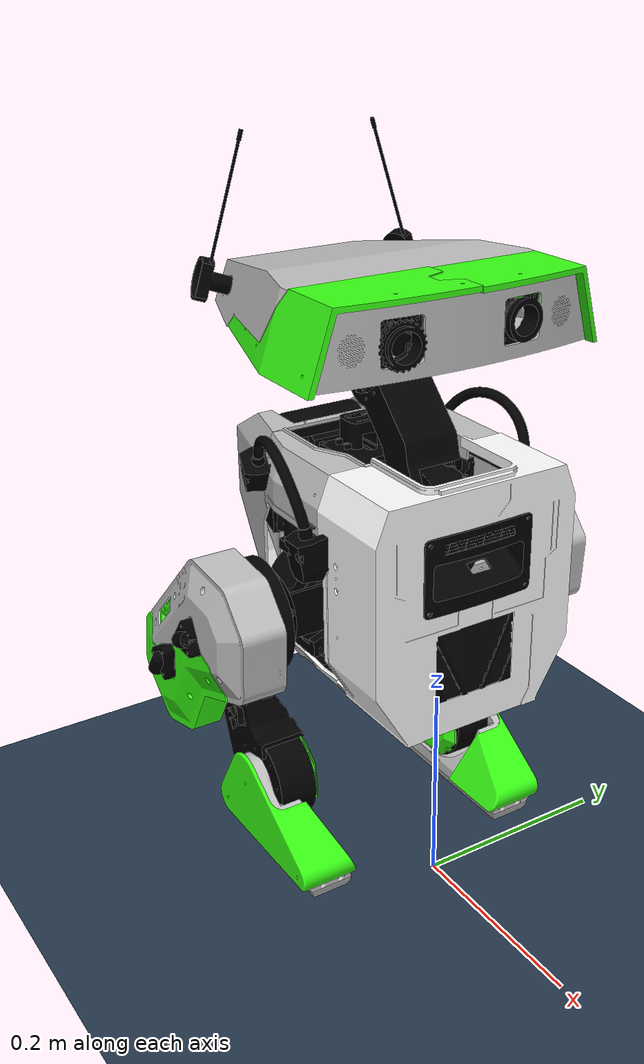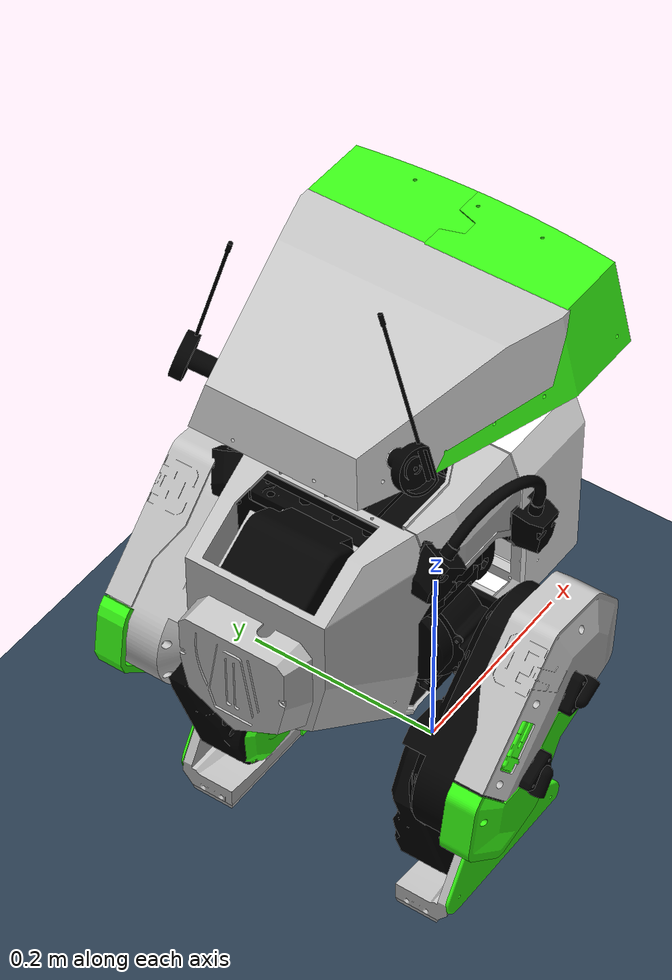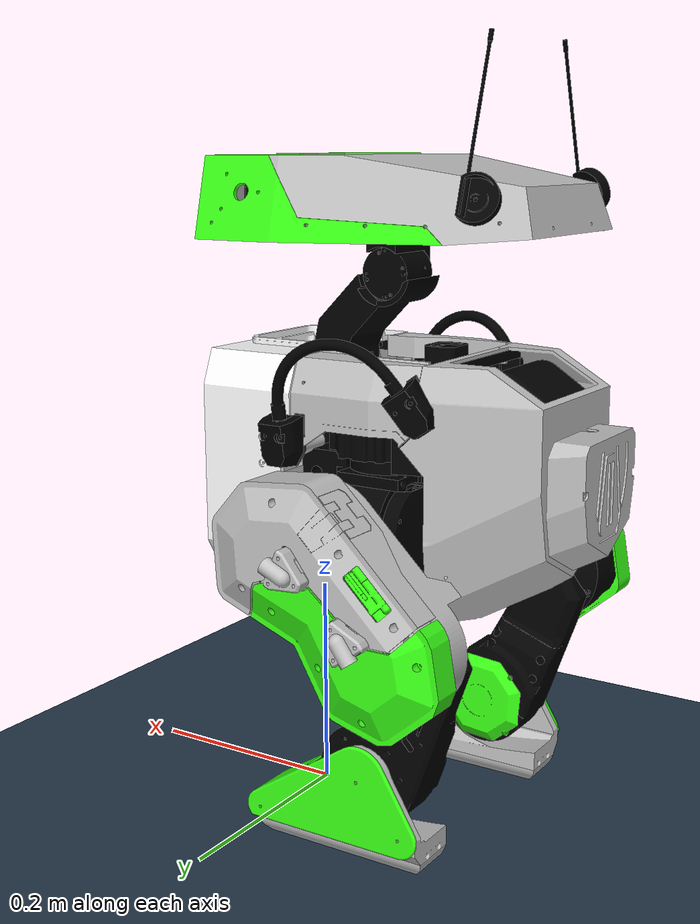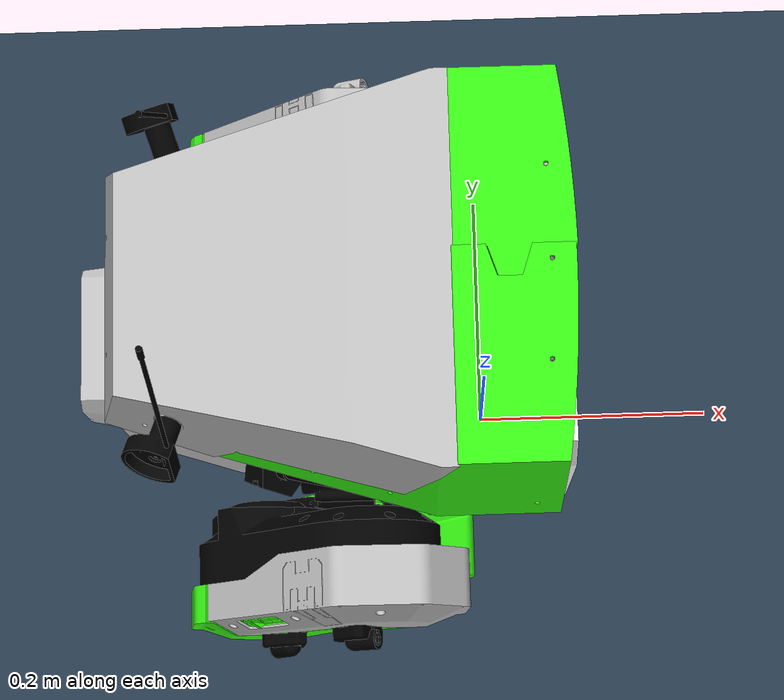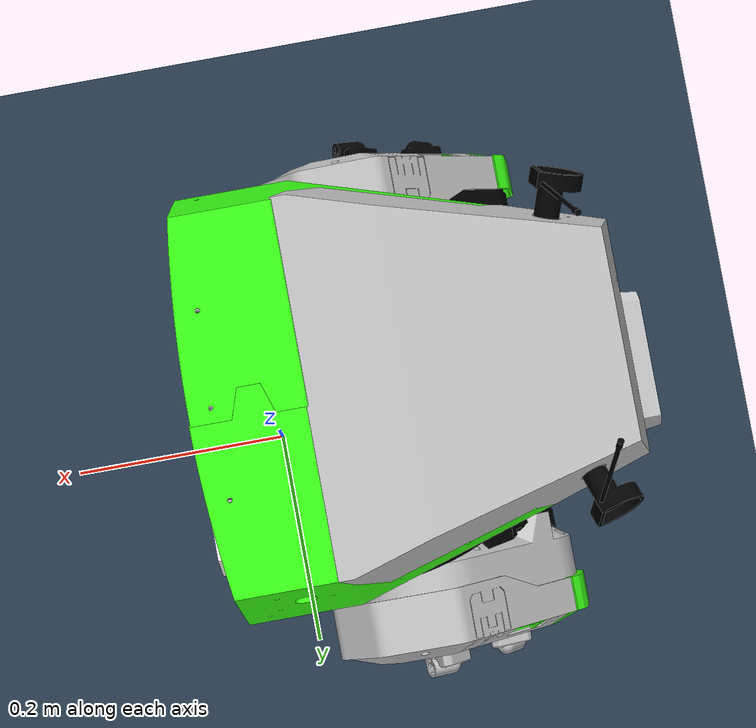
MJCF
<mujoco model="bdx-r">
  <compiler angle="radian" meshdir="assets" autolimits="true"/>

  <default>
    <default class="bdx-r">
      <site group="5" rgba="1 0 0 1" size="0.01" />
      <default class="visual">
          <geom type="mesh" contype="0" conaffinity="0" group="2" density="0" material="black"/>
      </default>
      <default class="collision">
          <geom type="capsule" group="3" material="bright_orange" contype="1" conaffinity="1"/>
      </default>
    </default>
  </default>

  <asset>
    <!-- Textures -->
    <material name="matplane" reflectance="0.3" texture="texplane" texrepeat="1 1" texuniform="true"/>
    <texture type="skybox" builtin="gradient" rgb1="0.3 0.5 0.7" rgb2="0 0 0" width="512" height="512"/>
    <texture name="texplane" type="2d" builtin="checker" rgb1=".2 .3 .4" rgb2=".1 0.15 0.2" width="512" height="512" mark="cross" markrgb=".8 .8 .8"/>

    <!-- Materials -->
    <material name="neon_green" rgba="0.22 1.0 0.08 1.0"/>
    <material name="white" rgba="1.0 1.0 1.0 1.0"/>
    <material name="black" rgba="0.0 0.0 0.0 1.0"/>
    <material name="silver" rgba="0.75 0.75 0.75 1.0"/>
    <material name="red" rgba="1 0 0 1"/>
    <material name="bright_orange"  rgba="1 0.65 0 0.2"/>

    <!-- Meshes -->
    <mesh name="base_link" file="base_link.stl" scale="0.001 0.001 0.001"/>
    <mesh name="Left_Hip_Yaw_Motor" file="Left_Hip_Yaw_Motor.stl" scale="0.001 0.001 0.001"/>
    <mesh name="Right_Hip_Yaw_Motor" file="Right_Hip_Yaw_Motor.stl" scale="0.001 0.001 0.001"/>
    <mesh name="Neck_Motor" file="Neck_Motor.stl" scale="0.001 0.001 0.001"/>
    <mesh name="Neck" file="Neck.stl" scale="0.001 0.001 0.001"/>
    <mesh name="Bottom_Cover" file="Bottom_Cover.stl" scale="0.001 0.001 0.001"/>
    <mesh name="Right_Hip_Yaw_Support" file="Right_Hip_Yaw_Support.stl" scale="0.001 0.001 0.001"/>
    <mesh name="Left_Hip_Yaw_Support" file="Left_Hip_Yaw_Support.stl" scale="0.001 0.001 0.001"/>
    <mesh name="Base_Top_Clamp" file="Base_Top_Clamp.stl" scale="0.001 0.001 0.001"/>
    <mesh name="Head_Pitch_Motor" file="Head_Pitch_Motor.stl" scale="0.001 0.001 0.001"/>
    <mesh name="Left_Holder" file="Left_Holder.stl" scale="0.001 0.001 0.001"/>
    <mesh name="Top_Base_Frame" file="Top_Base_Frame.stl" scale="0.001 0.001 0.001"/>
    <mesh name="Head_Pitch_Motor_Support" file="Head_Pitch_Motor_Support.stl" scale="0.001 0.001 0.001"/>
    <mesh name="Head_Yaw_Motor" file="Head_Yaw_Motor.stl" scale="0.001 0.001 0.001"/>
    <mesh name="Head_Roll_Connector" file="Head_Roll_Connector.stl" scale="0.001 0.001 0.001"/>
    <mesh name="Head_Roll_Motor" file="Head_Roll_Motor.stl" scale="0.001 0.001 0.001"/>
    <mesh name="Head_Roll_Motor_Mount" file="Head_Roll_Motor_Mount.stl" scale="0.001 0.001 0.001"/>
    <mesh name="Front_Support" file="Front_Support.stl" scale="0.001 0.001 0.001"/>
    <mesh name="Right_Cable_Support" file="Right_Cable_Support.stl" scale="0.001 0.001 0.001"/>
    <mesh name="Head_Base_Plate" file="Head_Base_Plate.stl" scale="0.001 0.001 0.001"/>
    <mesh name="Right_Eye" file="Right_Eye.stl" scale="0.001 0.001 0.001"/>
    <mesh name="Front_Cover" file="Front_Cover.stl" scale="0.001 0.001 0.001"/>
    <mesh name="Right_Head_Support" file="Right_Head_Support.stl" scale="0.001 0.001 0.001"/>
    <mesh name="Right_Front_Cover" file="Right_Front_Cover.stl" scale="0.001 0.001 0.001"/>
    <mesh name="Left_Eye" file="Left_Eye.stl" scale="0.001 0.001 0.001"/>
    <mesh name="Right_Holder" file="Right_Holder.stl" scale="0.001 0.001 0.001"/>
    <mesh name="Left_Head_Support" file="Left_Head_Support.stl" scale="0.001 0.001 0.001"/>
    <mesh name="Left_Front_Cover" file="Left_Front_Cover.stl" scale="0.001 0.001 0.001"/>
    <mesh name="Battery_Holder" file="Battery_Holder.stl" scale="0.001 0.001 0.001"/>
    <mesh name="Left_Cable_Support" file="Left_Cable_Support.stl" scale="0.001 0.001 0.001"/>
    <mesh name="Battery" file="Battery.stl" scale="0.001 0.001 0.001"/>
    <mesh name="Back_Support" file="Back_Support.stl" scale="0.001 0.001 0.001"/>
    <mesh name="Rear_Cover" file="Rear_Cover.stl" scale="0.001 0.001 0.001"/>
    <mesh name="Face" file="Face.stl" scale="0.001 0.001 0.001"/>
    <mesh name="Head_Rear_Cover" file="Head_Rear_Cover.stl" scale="0.001 0.001 0.001"/>
    <mesh name="Rear_Head_Plate" file="Rear_Head_Plate.stl" scale="0.001 0.001 0.001"/>
    <mesh name="Right_Ear" file="Right_Ear.stl" scale="0.001 0.001 0.001"/>
    <mesh name="Left_Ear" file="Left_Ear.stl" scale="0.001 0.001 0.001"/>
    <mesh name="Left_Hip_Top_Holder" file="Left_Hip_Top_Holder.stl" scale="0.001 0.001 0.001"/>
    <mesh name="Left_Hip_Roll_Motor" file="Left_Hip_Roll_Motor.stl" scale="0.001 0.001 0.001"/>
    <mesh name="Left_Hip_Roll_Connector" file="Left_Hip_Roll_Connector.stl" scale="0.001 0.001 0.001"/>
    <mesh name="Left_Hip_Pitch_Motor" file="Left_Hip_Pitch_Motor.stl" scale="0.001 0.001 0.001"/>
    <mesh name="Left_Upper_Leg" file="Left_Upper_Leg.stl" scale="0.001 0.001 0.001"/>
    <mesh name="Left_Hip_Bottom_Holder" file="Left_Hip_Bottom_Holder.stl" scale="0.001 0.001 0.001"/>
    <mesh name="Left_Knee_Motor" file="Left_Knee_Motor.stl" scale="0.001 0.001 0.001"/>
    <mesh name="Left_Lower_Leg" file="Left_Lower_Leg.stl" scale="0.001 0.001 0.001"/>
    <mesh name="Left_Ankle_Cover" file="Left_Ankle_Cover.stl" scale="0.001 0.001 0.001"/>
    <mesh name="Left_Ankle_Motor" file="Left_Ankle_Motor.stl" scale="0.001 0.001 0.001"/>
    <mesh name="Left_Foot" file="Left_Foot.stl" scale="0.001 0.001 0.001"/>
    <mesh name="Left_Foot_Pad" file="Left_Foot_Pad.stl" scale="0.001 0.001 0.001"/>
    <mesh name="Left_Foot_Cover" file="Left_Foot_Cover.stl" scale="0.001 0.001 0.001"/>
    <mesh name="Left_Upper_Leg_Cover" file="Left_Upper_Leg_Cover.stl" scale="0.001 0.001 0.001"/>
    <mesh name="Left_Lower_Leg_Cover" file="Left_Lower_Leg_Cover.stl" scale="0.001 0.001 0.001"/>
    <mesh name="Left_Upper_Leg_Detail" file="Left_Upper_Leg_Detail.stl" scale="0.001 0.001 0.001"/>
    <mesh name="Camera_Mount" file="Camera_Mount.stl" scale="0.001 0.001 0.001"/>
    <mesh name="Front_Grill" file="Front_Grill.stl" scale="0.001 0.001 0.001"/>
    <mesh name="Rear_Antenna_Box" file="Rear_Antenna_Box.stl" scale="0.001 0.001 0.001"/>
    <mesh name="Right_Hip_Top_Holder" file="Right_Hip_Top_Holder.stl" scale="0.001 0.001 0.001"/>
    <mesh name="Right_Hip_Roll_Motor" file="Right_Hip_Roll_Motor.stl" scale="0.001 0.001 0.001"/>
    <mesh name="Right_Hip_Roll_Connector" file="Right_Hip_Roll_Connector.stl" scale="0.001 0.001 0.001"/>
    <mesh name="Right_Hip_Bottom_Holder" file="Right_Hip_Bottom_Holder.stl" scale="0.001 0.001 0.001"/>
    <mesh name="Right_Hip_Pitch_Motor" file="Right_Hip_Pitch_Motor.stl" scale="0.001 0.001 0.001"/>
    <mesh name="Right_Upper_Leg" file="Right_Upper_Leg.stl" scale="0.001 0.001 0.001"/>
    <mesh name="Right_Knee_Motor" file="Right_Knee_Motor.stl" scale="0.001 0.001 0.001"/>
    <mesh name="Right_Lower_Leg" file="Right_Lower_Leg.stl" scale="0.001 0.001 0.001"/>
    <mesh name="Right_Ankle_Motor" file="Right_Ankle_Motor.stl" scale="0.001 0.001 0.001"/>
    <mesh name="Right_Foot" file="Right_Foot.stl" scale="0.001 0.001 0.001"/>
    <mesh name="Right_Foot_Pad" file="Right_Foot_Pad.stl" scale="0.001 0.001 0.001"/>
    <mesh name="Right_Foot_Cover" file="Right_Foot_Cover.stl" scale="0.001 0.001 0.001"/>
    <mesh name="Right_Upper_Leg_Cover" file="Right_Upper_Leg_Cover.stl" scale="0.001 0.001 0.001"/>
    <mesh name="Right_Lower_Leg_Cover" file="Right_Lower_Leg_Cover.stl" scale="0.001 0.001 0.001"/>
    <mesh name="Right_Upper_Leg_Detail" file="Right_Upper_Leg_Detail.stl" scale="0.001 0.001 0.001"/>
    <mesh name="Right_Ankle_Cover" file="Right_Ankle_Cover.stl" scale="0.001 0.001 0.001"/>
    <mesh name="Left_Top_Cover" file="Left_Top_Cover.stl" scale="0.001 0.001 0.001"/>
    <mesh name="Right_Top_Cover" file="Right_Top_Cover.stl" scale="0.001 0.001 0.001"/>
    <mesh name="imu_mount" file="imu_mount.stl" scale="0.001 0.001 0.001"/>
    <mesh name="imu" file="imu.stl" scale="0.001 0.001 0.001"/>
  </asset>

  <worldbody>
    <!-- FIXED: condim=3 with friction matching training config -->
    <geom name="ground" type="plane" pos="0 0 0" size="0 0 1" material="matplane" condim="3" friction="0.6 0.005 0.0001"/>
    <body name="base_link" pos="0 0 0.33" childclass="bdx-r">
      <freejoint/>
      <inertial pos="-0.087197 -3.9994e-05 -0.0342399" mass="1" fullinertia="0.042338 0.058645 0.033168 7e-05 0.0057 3.4e-05"/>
      <geom class="visual" mesh="base_link"/>
      <geom class="collision" name="base_collision" size="0.12" fromto="-0.2 0 0 -0.05 0 0" condim="1"/>

      <!-- ATTACHMENT: Bottom Cover -->
      <body name="Bottom_Cover" pos="-0.075084 0.063 -0.123908">
        <inertial pos="-0.002157 -0.063 0.000914" mass="0.1" fullinertia="0.000618 6.5e-05 0.000671 0 0 0"/>
        <geom class="visual" mesh="Bottom_Cover" material="white" pos="0.075084 -0.063 0.123908"/>
      </body>

      <!-- ATTACHMENT: Hip Supports -->
      <body name="Right_Hip_Yaw_Support" pos="-0.045104 -0.01775 0.002892">
        <inertial pos="-0.002428 -0.029803 -0.005776" mass="0.08" fullinertia="0.000485 0.000326 0.00034 -1e-05 3.5e-05 7e-06"/>
        <geom class="visual" mesh="Right_Hip_Yaw_Support" pos="0.045104 0.01775 -0.002892"/>
      </body>
      <body name="Left_Hip_Yaw_Support" pos="-0.045104 0.01775 0.002892">
        <inertial pos="-0.002464 0.029604 -0.005672" mass="0.08" fullinertia="0.000479 0.000323 0.000336 1e-05 3.4e-05 -8e-06"/>
        <geom class="visual" mesh="Left_Hip_Yaw_Support" pos="0.045104 -0.01775 -0.002892"/>
      </body>

      <!-- ATTACHMENT: Base Top Clamp -->
      <body name="Base_Top_Clamp" pos="-0.157 -0.06 0.063636">
        <inertial pos="0.011572 0.06 0.004831" mass="0.044" fullinertia="0.000471 8.8e-05 0.000553 0 -1e-06 0"/>
        <geom class="visual" mesh="Base_Top_Clamp" pos="0.157 0.06 -0.063636"/>

        <!-- IMU Stack -->
        <body name="imu_mount" pos="0.008626 0.091249 0.01">
            <inertial pos="0.0455 -0.031249 0.009645" mass="0.03" fullinertia="0.000153 0.000224 0.000359 0 2e-05 0"/>
            <geom class="visual" mesh="imu_mount" pos="0.148374 -0.031249 -0.073636"/>
            <site name='imu' size='0.01' pos='0.00865 -0.010349 0.015' />
            <body name="imu" pos="0.00865 -0.010349 0.015">
                <inertial pos="0.007581 -0.0209 0.013692" mass="0.05" fullinertia="2.8e-05 1.8e-05 3.1e-05 0 0 0"/>
                <geom class="visual" mesh="imu" pos="0.139724 -0.0209 -0.088636"/>
            </body>
        </body>
      </body>

      <!-- ATTACHMENT: Holders -->
      <body name="Left_Holder" pos="-0.1581 0.090997 0.065042">
         <inertial pos="0.065465 0.02028 9e-05" mass="0.08" fullinertia="0.000338 0.001539 0.001296 -0.000176 0.000298 9e-06"/>
         <geom class="visual" mesh="Left_Holder" pos="0.1581 -0.090997 -0.065042"/>
      </body>
      <body name="Right_Holder" pos="-0.1581 -0.090997 0.065042">
         <inertial pos="0.0661 -0.020325 -0.000478" mass="0.08" fullinertia="0.000331 0.001536 0.001298 0.000176 0.000301 -1.1e-05"/>
         <geom class="visual" mesh="Right_Holder" pos="0.1581 0.090997 -0.065042"/>
      </body>

      <!-- ATTACHMENT: Top Frame -->
      <body name="Top_Base_Frame" pos="-0.148285 0.084346 0.090657">
         <inertial pos="0.087658 -0.084346 0.008533" mass="0.15" fullinertia="0.005038 0.003533 0.008543 0 -3.4e-05 0"/>
         <geom class="visual" mesh="Top_Base_Frame" pos="0.148285 -0.084346 -0.090657"/>
         <!-- Left/Right Top Covers -->
         <body name="Left_Top_Cover" pos="0.100005 0.014043 -0.004554">
            <inertial pos="-0.044107 -0.010096 0.000434" mass="0.03" fullinertia="0.000197 0.000482 0.000427 4e-06 6e-06 6.6e-05"/>
            <geom class="visual" mesh="Left_Top_Cover" material="silver" pos="0.04828 -0.098389 -0.086103"/>
         </body>
         <body name="Right_Top_Cover" pos="0.100005 -0.182735 -0.004554">
            <inertial pos="-0.044107 0.010096 0.000434" mass="0.03" fullinertia="0.000197 0.000482 0.000427 -4e-06 6e-06 -6.6e-05"/>
            <geom class="visual" mesh="Right_Top_Cover" material="silver" pos="0.04828 0.098389 -0.086103"/>
         </body>
      </body>

      <!-- ATTACHMENT: Battery & Rear Assembly -->
      <body name="Battery_Holder" pos="-0.157777 0.0 -0.083128">
         <inertial pos="-0.011259 0 0.074214" mass="0.18" fullinertia="0.003194 0.002315 0.000949 0 7.7e-05 0"/>
         <geom class="visual" mesh="Battery_Holder" material="silver" pos="0.157777 -0.0 0.083128"/>
         <body name="Battery" pos="-0.024139 -0.0278 0.14533">
            <inertial pos="-0.031873 0.0275 -0.046524" mass="1.25" fullinertia="0.020895 0.020316 0.008316 0 -0.000252 0"/>
            <geom class="visual" mesh="Battery" pos="0.181916 0.0278 -0.062202"/>
         </body>
         <body name="Back_Support" pos="-0.018024 0.0 0.0">
            <inertial pos="-0.016338 0.000858 0.078592" mass="0.1" fullinertia="0.007073 0.003535 0.004743 6e-06 0.000348 -2.5e-05"/>
            <geom class="visual" mesh="Back_Support" material="silver" pos="0.175801 -0.0 0.083128"/>
            <body name="Rear_Cover" pos="0.005701 -0.014557 -0.031856">
                <inertial pos="-0.037942 0.015443 0.08144" mass="0.15" fullinertia="0.003477 0.002602 0.002166 0 0.000505 0"/>
                <geom class="visual" mesh="Rear_Cover" material="silver" pos="0.1701 0.014557 0.114984"/>
                <body name="Rear_Antenna_Box" pos="-0.089906 -0.033615 0.123682">
                    <inertial pos="-0.022637 0.049551 -0.008124" mass="0.1" fullinertia="0.001016 0.000514 0.000582 0 1e-05 -1e-06"/>
                    <geom class="visual" mesh="Rear_Antenna_Box" material="silver" pos="0.260006 0.048172 -0.008698"/>
                </body>
            </body>
         </body>
      </body>

      <!-- ATTACHMENT: Front Assembly -->
      <body name="Front_Support" pos="-0.0112 0.01 -0.005406">
        <inertial pos="0.002676 -0.01 -0.016527" mass="0.15" fullinertia="0.014288 0.006674 0.007707 0 7.8e-05 0"/>
        <geom class="visual" mesh="Front_Support" material="silver" pos="0.0112 -0.01 0.005406"/>
        <body name="Right_Cable_Support" pos="0.0 -0.102343 0.035039">
           <inertial pos="-0.004644 0.012088 -0.002943" mass="0.08" fullinertia="0.000111 0.000115 0.000123 -1.3e-05 9e-06 3e-06"/>
           <geom class="visual" mesh="Right_Cable_Support" material="silver" pos="0.0112 0.092343 -0.029633"/>
        </body>
        <body name="Left_Cable_Support" pos="0.0 0.082343 0.035039">
           <inertial pos="-0.004644 -0.012088 -0.002943" mass="0.08" fullinertia="0.000111 0.000115 0.000123 1.3e-05 9e-06 -3e-06"/>
           <geom class="visual" mesh="Left_Cable_Support" material="silver" pos="0.0112 -0.092343 -0.029633"/>
        </body>
        <body name="Front_Cover" pos="0.004894 -0.112243 -0.028497">
            <inertial pos="0.033339 0.100268 0.033143" mass="0.2" fullinertia="0.039575 0.0241 0.020937 -0.00014 -0.00097 -0.000403"/>
            <geom class="visual" mesh="Front_Cover" material="white" pos="0.006306 0.102243 0.033903"/>
            <body name="Camera_Mount" pos="0.061778 0.154093 0.101024">
                <inertial pos="-0.006173 -0.051526 -0.029339" mass="0.04" fullinertia="0.000378 0.000119 0.000303 -1e-06 -4e-06 -1e-06"/>
                <geom class="visual" mesh="Camera_Mount" pos="-0.055472 -0.05185 -0.067121"/>
            </body>
            <body name="Front_Grill" pos="-0.725184 0.102193 -0.06274">
                 <inertial pos="0.785358 0 0.03431" mass="0.01" fullinertia="0.000159 5.8e-05 0.000102 0 -1e-06 0"/>
                 <geom class="visual" mesh="Front_Grill" pos="0.73149 5e-05 0.096643"/>
            </body>
        </body>
      </body>

      <!-- ================= LEFT LEG CHAIN ================= -->
      <body name="Left_Hip_Yaw_Motor" pos="-0.148374 0.068751 0.024336">
        <inertial pos="0.045214 -0.018732 0.021252" mass="0.92" fullinertia="0.000918 0.00088 0.001215 -1e-06 1e-06 6e-06"/>
        <geom class="visual" mesh="Left_Hip_Yaw_Motor" pos="0.148374 -0.068751 -0.024336"/>

        <!-- JOINT: Left_Hip_Yaw -->
        <body name="Left_Hip_Top_Holder" pos="0.04527 -0.018751 -0.0025">
          <joint name="Left_Hip_Yaw" axis="0 0 1" range="-0.2618 0.2618" armature="0.02"/>
          <inertial pos="0.00162 0.003199 -0.011367" mass="0.08" fullinertia="0.000247 0.000261 0.000411 -5e-06 2.3e-05 1.1e-05"/>
          <geom class="visual" mesh="Left_Hip_Top_Holder" pos="0.103104 -0.05 -0.021836"/>

          <body name="Left_Hip_Roll_Motor" pos="0.0155 0.031251 -0.017274">
            <inertial pos="-0.02116 -0.018728 -0.045227" mass="0.92" fullinertia="0.001212 0.000876 0.000914 -6e-06 1e-06 1e-06"/>
            <geom class="visual" mesh="Left_Hip_Roll_Motor" pos="0.087604 -0.081251 -0.004562"/>
            <body name="Left_Hip_Bottom_Holder" pos="0 0 -0.09054">
                <inertial pos="-0.013283 -0.026327 -0.002968" mass="0.075" fullinertia="0.000162 0.000187 0.000281 -3e-06 -2e-05 -3e-06"/>
                <geom class="visual" mesh="Left_Hip_Bottom_Holder" pos="0.087604 -0.081251 0.085978"/>
            </body>

            <!-- JOINT: Left_Hip_Roll -->
            <body name="Left_Hip_Roll_Connector" pos="0.0025 -0.018751 -0.04527">
              <joint name="Left_Hip_Roll" axis="-1 0 0" range="-0.2618 0.349" armature="0.02"/>
              <inertial pos="0.002336 0.02932 9e-05" mass="0.1" fullinertia="0.000314 7e-05 0.000291 3.6e-05 1e-06 -1e-06"/>
              <geom class="visual" mesh="Left_Hip_Roll_Connector" pos="0.085104 -0.0625 0.040708"/>

              <!-- JOINT: Left_Hip_Pitch -->
              <body name="Left_Hip_Pitch_Motor" pos="-0.008646 0.07125 0.001341">
                <joint name="Left_Hip_Pitch" axis="0 -1 0" range="-1.047 0.698"/>
                <inertial pos="6e-05 0.023752 -2e-05" mass="0.92" fullinertia="0.000918 0.001215 0.00088 -1e-06 -1e-06 -6e-06"/>
                <geom class="visual" mesh="Left_Hip_Pitch_Motor" pos="0.09375 -0.13375 0.039367"/>

                <body name="Left_Upper_Leg" pos="-0.018752 0.0025 0.04527">
                   <inertial pos="-0.024274 0.017265 -0.078797" mass="0.5" fullinertia="0.010775 0.01718 0.011452 -0.000235 -0.003926 -6.7e-05"/>
                   <geom class="visual" mesh="Left_Upper_Leg" material="silver" pos="0.112502 -0.13625 -0.005903"/>
                   <body name="Left_Upper_Leg_Cover" pos="0.058902 0.0465 -0.075069">
                       <inertial pos="-0.040941 0.000937 0.038985" mass="0.075" fullinertia="0.000665 0.002193 0.001753 6.4e-05 -5.9e-05 4e-05"/>
                       <geom class="visual" mesh="Left_Upper_Leg_Cover" material="silver" pos="0.0536 -0.18275 0.069166"/>
                       <body name="Left_Upper_Leg_Detail" pos="-0.093612 0.011824 0.044456">
                           <inertial pos="-0.024383 -0.001117 -0.028995" mass="0.01" fullinertia="7e-06 1.4e-05 7e-06 0 -6e-06 0"/>
                           <geom class="visual" mesh="Left_Upper_Leg_Detail" material="neon_green" pos="0.147212 -0.194574 0.02471"/>
                       </body>
                   </body>
                   <body name="Left_Lower_Leg_Cover" pos="-0.10624 0.0465 -0.111941">
                       <inertial pos="0.065607 -0.000288 -0.020916" mass="0.057" fullinertia="0.000743 0.002662 0.002147 6.7e-05 -0.00039 -2.3e-05"/>
                       <geom class="visual" mesh="Left_Lower_Leg_Cover" material="neon_green" pos="0.218742 -0.18275 0.106038"/>
                   </body>

                   <body name="Left_Knee_Motor" pos="-0.106013 0.0 -0.141269">
                       <inertial pos="0.045479 0.021252 0.018347" mass="0.92" fullinertia="0.00088 0.001215 0.000918 6e-06 1e-06 -1e-06"/>
                       <geom class="visual" mesh="Left_Knee_Motor" pos="0.218515 -0.13625 0.135366"/>

                       <!-- JOINT: Left_Knee -->
                       <body name="Left_Lower_Leg" pos="0.045459 -0.0025 0.01829">
                           <joint name="Left_Knee" axis="0 1 0" range="-0.9599 1.309" armature="0.02"/>
                           <inertial pos="0.012283 -0.021155 -0.065391" mass="0.33" fullinertia="0.009108 0.011365 0.003048 0.000146 0.00238 -0.000492"/>
                           <geom class="visual" mesh="Left_Lower_Leg" pos="0.173056 -0.13375 0.117076"/>
                           <body name="Left_Ankle_Cover" pos="0.072419 -0.045377 -0.097578">
                               <inertial pos="-0.02727 -0.006354 -0.0325" mass="0.01" fullinertia="5.6e-05 0.00011 5.6e-05 0 0 0"/>
                               <geom class="visual" mesh="Left_Ankle_Cover" material="neon_green" pos="0.100637 -0.088373 0.214654"/>
                           </body>

                           <body name="Left_Ankle_Motor" pos="0.009131 -0.00934 -0.124165">
                               <inertial pos="0.036534 -0.016898 -0.007244" mass="0.405" fullinertia="0.000222 0.000317 0.000221 -1e-06 4e-06 -1e-06"/>
                               <geom class="visual" mesh="Left_Ankle_Motor" pos="0.163925 -0.12441 0.241241"/>

                               <!-- JOINT: Left_Ankle -->
                               <body name="Left_Foot" pos="0.036018 0.004 -0.005913">
                                   <joint name="Left_Ankle" axis="0 -1 0" range="-0.785 1.2217" armature="0.0042"/>
                                   <inertial pos="0.02614 -0.004666 -0.039192" mass="0.22" fullinertia="0.001447 0.004937 0.004441 0.000142 0.000184 -0.000331"/>
                                   <geom class="visual" mesh="Left_Foot" material="silver" pos="0.127907 -0.12841 0.247154"/>
                                   <site name="left_foot" pos="0.035 -0.025682 -0.071" size="0.01" rgba="1 0 0 1"/>
                                   <body name="Left_Foot_Pad" pos="0.10668 -0.025682 -0.057538">
                                       <inertial pos="-0.0795 0.007701 -0.014067" mass="0.08" fullinertia="0.000118 0.001881 0.001957 0 0 0"/>
                                       <geom class="visual" mesh="Left_Foot_Pad" material="silver" pos="0.021227 -0.102728 0.304692"/>
                                       <!-- FIXED: Collision capsules matching training XML exactly -->
                                       <geom class="collision" name="left_foot_collision1" size="0.01" fromto="-0.152 -0.009 -0.013 -0.007 -0.009 -0.013" condim="3" priority="1" friction="0.6 0.005 0.0001"/>
                                       <geom class="collision" name="left_foot_collision2" size="0.01" fromto="-0.147 -0.004 -0.013 -0.012 -0.004 -0.013" condim="3" priority="1" friction="0.6 0.005 0.0001"/>
                                       <geom class="collision" name="left_foot_collision3" size="0.01" fromto="-0.142 0.001 -0.013 -0.017 0.001 -0.013" condim="3" priority="1" friction="0.6 0.005 0.0001"/>
                                       <geom class="collision" name="left_foot_collision4" size="0.01" fromto="-0.142 0.006 -0.013 -0.017 0.006 -0.013" condim="3" priority="1" friction="0.6 0.005 0.0001"/>
                                       <geom class="collision" name="left_foot_collision5" size="0.01" fromto="-0.142 0.011 -0.013 -0.017 0.011 -0.013" condim="3" priority="1" friction="0.6 0.005 0.0001"/>
                                       <geom class="collision" name="left_foot_collision6" size="0.01" fromto="-0.147 0.016 -0.013 -0.012 0.016 -0.013" condim="3" priority="1" friction="0.6 0.005 0.0001"/>
                                       <geom class="collision" name="left_foot_collision7" size="0.01" fromto="-0.152 0.021 -0.013 -0.007 0.021 -0.013" condim="3" priority="1" friction="0.6 0.005 0.0001"/>
                                   </body>
                                   <body name="Left_Foot_Cover" pos="0.102636 0.0135 -0.048903">
                                       <inertial pos="-0.053452 -0.014306 0.021311" mass="0.02" fullinertia="0.000477 0.000977 0.000856 0.000178 6.1e-05 3.8e-05"/>
                                       <geom class="visual" mesh="Left_Foot_Cover" material="neon_green" pos="0.025271 -0.14191 0.296057"/>
                                   </body>
                               </body>
                           </body>
                       </body>
                   </body>
                </body>
              </body>
            </body>
          </body>
        </body>
      </body>

      <!-- ================= RIGHT LEG CHAIN ================= -->
      <body name="Right_Hip_Yaw_Motor" pos="-0.148374 -0.068751 0.024336">
        <inertial pos="0.045327 0.018732 0.021252" mass="0.92" fullinertia="0.000918 0.00088 0.001215 -1e-06 -1e-06 -6e-06"/>
        <geom class="visual" mesh="Right_Hip_Yaw_Motor" pos="0.148374 0.068751 -0.024336"/>

        <!-- JOINT: Right_Hip_Yaw -->
        <body name="Right_Hip_Top_Holder" pos="0.04527 0.018751 -0.0025">
           <joint name="Right_Hip_Yaw" axis="0 0 1" range="-0.2618 0.2618" armature="0.02"/>
           <inertial pos="0.00162 -0.003199 -0.013107" mass="0.08" fullinertia="0.000247 0.000261 0.000411 5e-06 2.3e-05 -1.1e-05"/>
           <geom class="visual" mesh="Right_Hip_Top_Holder" pos="0.103104 0.05 -0.021836"/>

           <body name="Right_Hip_Roll_Motor" pos="0.0155 0.006251 -0.019014">
               <inertial pos="-0.02116 -0.018774 -0.045227" mass="0.92" fullinertia="0.001212 0.000876 0.000914 6e-06 1e-06 -1e-06"/>
               <geom class="visual" mesh="Right_Hip_Roll_Motor" pos="0.087604 0.043749 -0.002822"/>
               <body name="Right_Hip_Bottom_Holder" pos="0 0 -0.09054">
                   <inertial pos="-0.013283 -0.011175 -0.002968" mass="0.075" fullinertia="0.000162 0.000187 0.000281 3e-06 -2e-05 3e-06"/>
                   <geom class="visual" mesh="Right_Hip_Bottom_Holder" pos="0.087604 0.043749 0.087718"/>
               </body>

               <!-- JOINT: Right_Hip_Roll -->
               <body name="Right_Hip_Roll_Connector" pos="0.0025 -0.018751 -0.04527">
                   <joint name="Right_Hip_Roll" axis="-1 0 0" range="-0.349 0.2618" armature="0.02"/>
                   <inertial pos="0.002336 -0.02932 9e-05" mass="0.1" fullinertia="0.000314 7e-05 0.000291 -3.6e-05 1e-06 1e-06"/>
                   <geom class="visual" mesh="Right_Hip_Roll_Connector" pos="0.085104 0.0625 0.042448"/>

                   <!-- JOINT: Right_Hip_Pitch -->
                   <body name="Right_Hip_Pitch_Motor" pos="-0.008646 -0.07125 0.001341">
                       <joint name="Right_Hip_Pitch" axis="0 1 0" range="-0.698 1.047"/>
                       <inertial pos="6e-05 -0.023752 -2e-05" mass="0.92" fullinertia="0.000918 0.001215 0.00088 1e-06 -1e-06 6e-06"/>
                       <geom class="visual" mesh="Right_Hip_Pitch_Motor" pos="0.09375 0.13375 0.041107"/>

                       <body name="Right_Upper_Leg" pos="-0.018752 -0.0025 0.04527">
                           <inertial pos="-0.024281 -0.017242 -0.078769" mass="0.5" fullinertia="0.01076 0.017182 0.011445 0.000229 -0.003927 6.8e-05"/>
                           <geom class="visual" mesh="Right_Upper_Leg" pos="0.112502 0.13625 -0.004163"/>
                           <body name="Right_Upper_Leg_Cover" pos="0.058902 -0.0465 -0.075069">
                               <inertial pos="-0.040941 -0.000937 0.038985" mass="0.075" fullinertia="0.000665 0.002193 0.001753 -6.4e-05 -5.9e-05 -4e-05"/>
                               <geom class="visual" mesh="Right_Upper_Leg_Cover" material="silver" pos="0.0536 0.18275 0.070906"/>
                               <body name="Right_Upper_Leg_Detail" pos="-0.093612 -0.011824 0.042716">
                                   <inertial pos="-0.022199 0.000585 -0.026978" mass="0.01" fullinertia="7e-06 1.4e-05 7e-06 0 -6e-06 -0"/>
                                   <geom class="visual" mesh="Right_Upper_Leg_Detail" material="neon_green" pos="0.147212 0.194574 0.02819"/>
                               </body>
                           </body>
                           <body name="Right_Lower_Leg_Cover" pos="-0.10624 -0.0465 -0.111941">
                               <inertial pos="0.063691 -0.00605 -0.017485" mass="0.057" fullinertia="0.0004 0.001361 0.001071 -1.4e-05 -0.000208 2.7e-05"/>
                               <geom class="visual" mesh="Right_Lower_Leg_Cover" material="neon_green" pos="0.218742 0.18275 0.107778"/>
                           </body>

                           <body name="Right_Knee_Motor" pos="-0.078844 0.0 -0.07752">
                               <inertial pos="0.01831 -0.021252 -0.045402" mass="0.92" fullinertia="0.00088 0.001215 0.000918 -6e-06 1e-06 1e-06"/>
                               <geom class="visual" mesh="Right_Knee_Motor" pos="0.191346 0.13625 0.073357"/>

                               <!-- JOINT: Right_Knee -->
                               <body name="Right_Lower_Leg" pos="0.01829 0.0025 -0.045459">
                                   <joint name="Right_Knee" axis="0 -1 0" range="-1.309 0.9599" armature="0.02"/>
                                   <inertial pos="0.012283 0.021155 -0.065391" mass="0.33" fullinertia="0.009108 0.011365 0.003048 -0.000146 0.00238 0.000492"/>
                                   <geom class="visual" mesh="Right_Lower_Leg" pos="0.173056 0.13375 0.118816"/>
                                   <body name="Right_Ankle_Cover" pos="0.017878 0.045377 -0.162577">
                                       <inertial pos="0.027271 0.006354 0.032499" mass="0.01" fullinertia="5.6e-05 0.00011 5.6e-05 0 0 0"/>
                                       <geom class="visual" mesh="Right_Ankle_Cover" material="neon_green" pos="0.155178 0.088373 0.281393"/>
                                   </body>

                                   <body name="Right_Ankle_Motor" pos="0.044717 0.00934 -0.09358">
                                       <inertial pos="0.000948 0.016898 -0.037829" mass="0.405" fullinertia="0.000222 0.000317 0.000221 1e-06 4e-06 1e-06"/>
                                       <geom class="visual" mesh="Right_Ankle_Motor" pos="0.128339 0.12441 0.212396"/>

                                       <!-- JOINT: Right_Ankle -->
                                       <body name="Right_Foot" pos="0.000432 -0.004 -0.036498">
                                           <joint name="Right_Ankle" axis="0 1 0" range=" -1.2217 0.785" armature="0.0042"/>
                                           <inertial pos="0.02614 0.004666 -0.039192" mass="0.22" fullinertia="0.001447 0.004937 0.004441 -0.000142 0.000184 0.000331"/>
                                           <geom class="visual" mesh="Right_Foot" material="silver" pos="0.127907 0.12841 0.248894"/>
                                           <site name="right_foot" pos="0.035 0.018025 -0.071" size="0.01 0.01 0.01" rgba="1 0 0 1"/>
                                           <body name="Right_Foot_Pad" pos="0.10668 0.018025 -0.059278">
                                               <inertial pos="-0.0795 0 -0.012327" mass="0.08" fullinertia="0.000118 0.001881 0.001957 0 0 0"/>
                                               <geom class="visual" mesh="Right_Foot_Pad" material="silver" pos="0.021227 0.110385 0.308172"/>
                                               <!-- FIXED: Collision capsules matching training XML exactly -->
                                               <geom class="collision" name="right_foot_collision1" size="0.01" fromto="-0.152 0.017 -0.012 -0.007 0.017 -0.012" condim="3" priority="1" friction="0.6 0.005 0.0001"/>
                                               <geom class="collision" name="right_foot_collision2" size="0.01" fromto="-0.147 0.012 -0.012 -0.012 0.012 -0.012" condim="3" priority="1" friction="0.6 0.005 0.0001"/>
                                               <geom class="collision" name="right_foot_collision3" size="0.01" fromto="-0.142 0.007 -0.012 -0.017 0.007 -0.012" condim="3" priority="1" friction="0.6 0.005 0.0001"/>
                                               <geom class="collision" name="right_foot_collision4" size="0.01" fromto="-0.142 0.002 -0.012 -0.017 0.002 -0.012" condim="3" priority="1" friction="0.6 0.005 0.0001"/>
                                               <geom class="collision" name="right_foot_collision5" size="0.01" fromto="-0.142 -0.003 -0.012 -0.017 -0.003 -0.012" condim="3" priority="1" friction="0.6 0.005 0.0001"/>
                                               <geom class="collision" name="right_foot_collision6" size="0.01" fromto="-0.147 -0.008 -0.012 -0.012 -0.008 -0.012" condim="3" priority="1" friction="0.6 0.005 0.0001"/>
                                               <geom class="collision" name="right_foot_collision7" size="0.01" fromto="-0.152 -0.013 -0.012 -0.007 -0.013 -0.012" condim="3" priority="1" friction="0.6 0.005 0.0001"/>
                                           </body>
                                           <body name="Right_Foot_Cover" pos="-0.041752 -0.0135 -0.042544">
                                               <inertial pos="0.09107 0.014411 0.015231" mass="0.02" fullinertia="0.000512 0.001003 0.000864 -0.000182 5.3e-05 -4.9e-05"/>
                                               <geom class="visual" mesh="Right_Foot_Cover" material="neon_green" pos="0.169659 0.14191 0.291438"/>
                                           </body>
                                       </body>
                                   </body>
                               </body>
                           </body>
                       </body>
                   </body>
               </body>
           </body>
        </body>
      </body>

      <!-- ================= HEAD CHAIN ================= -->
      <body name="Neck_Motor" pos="0.017134 -0.01645 0.044533">
        <inertial pos="-0.030899 0.016898 0.020715" mass="0.405" fullinertia="0.000222 0.000313 0.000217 -1e-06 2e-06 -0"/>
        <geom class="visual" mesh="Neck_Motor" pos="-0.017134 0.01645 -0.044533"/>

        <!-- JOINT: Neck_Pitch -->
        <body name="Neck" pos="-0.030954 -0.004 0.019342">
           <joint name="Neck_Pitch" axis="0 1 0" range="-0.349 0.872" armature="0.0042"/>
           <inertial pos="-0.025459 0.012476 0.060682" mass="0.2" fullinertia="0.001657 0.001959 0.001097 0.000115 0.000638 -0.000281"/>
           <geom class="visual" mesh="Neck" pos="0.01382 0.02045 -0.063875"/>

           <body name="Head_Pitch_Motor" pos="-0.047284 -0.00566 0.100231">
               <inertial pos="-0.017591 0.017246 0.011297" mass="0.242" fullinertia="6.7e-05 5.9e-05 6.7e-05 0 0 -0"/>
               <geom class="visual" mesh="Head_Pitch_Motor" pos="0.061104 0.02611 -0.164106"/>

               <!-- JOINT: Head_Pitch -->
               <body name="Head_Pitch_Motor_Support" pos="-0.017501 0.0 0.011149">
                   <joint name="Head_Pitch" axis="0 1 0" range="-1.047 0.872" armature="0.0042"/>
                   <inertial pos="-0.008749 0.014921 0.040678" mass="0.08" fullinertia="0.000418 0.00034 0.00018 1.5e-05 6.4e-05 -6.2e-05"/>
                   <geom class="visual" mesh="Head_Pitch_Motor_Support" pos="0.078605 0.02611 -0.175255"/>

                   <body name="Head_Yaw_Motor" pos="-0.017969 0.027051 0.074357">
                       <inertial pos="0.01916 -0.008114 -0.017246" mass="0.242" fullinertia="6.6e-05 6.7e-05 5.9e-05 -0 -0 -1e-06"/>
                       <geom class="visual" mesh="Head_Yaw_Motor" pos="0.096574 -0.000941 -0.249612"/>

                       <!-- JOINT: Head_Yaw -->
                       <body name="Head_Roll_Connector" pos="0.01917 -0.007941 0.0">
                           <joint name="Head_Yaw" axis="0 0 -1" range="-0.872 0.872" armature="0.0042"/>
                           <inertial pos="0.020343 -4e-08 0.003477" mass="0.05" fullinertia="2.8e-05 7.4e-05 7.2e-05 -0 1.4e-05 0"/>
                           <geom class="visual" mesh="Head_Roll_Connector" pos="0.077404 0.007 -0.249612"/>

                           <!-- JOINT: Head_Roll -->
                           <body name="Head_Roll_Motor" pos="0.043997 0.0 -0.009">
                               <joint name="Head_Roll" axis="-1 0 0" range="-0.523 0.523" armature="0.0042"/>
                               <inertial pos="0.017246 -0.000173 -1e-05" mass="0.242" fullinertia="5.9e-05 6.7e-05 6.6e-05 1e-06 0 -0"/>
                               <geom class="visual" mesh="Head_Roll_Motor" pos="0.033407 0.007 -0.240612"/>

                               <body name="Head_Roll_Motor_Mount" pos="0 0.01917 -0.00794">
                                   <inertial pos="0.015202 -0.020057 -0.011798" mass="0.08" fullinertia="0.000227 0.000133 0.000316 3e-06 9e-06 5e-06"/>
                                   <geom class="visual" mesh="Head_Roll_Motor_Mount" pos="0.033407 -0.01217 -0.232672"/>

                                   <body name="Head_Base_Plate" pos="0.0021 -0.046722 -0.021495">
                                       <inertial pos="-0.031407 0.026759 -0.001" mass="0.24" fullinertia="0.004481 0.00289 0.007371 0 0 -0"/>
                                       <geom class="visual" mesh="Head_Base_Plate" material="silver" pos="0.031307 0.034552 -0.211177"/>
                                       <body name="Right_Eye" pos="0.058599 -0.056479 0.0">
                                            <inertial pos="0.005267 0.022107 0.020791" mass="0.02" fullinertia="4.8e-05 3e-05 2.6e-05 -1e-06 -3e-06 -1e-06"/>
                                            <geom class="visual" mesh="Right_Eye" pos="-0.027292 0.091031 -0.211177"/>
                                       </body>
                                       <body name="Left_Eye" pos="0.058599 0.109997 0.0">
                                            <inertial pos="0.004305 -0.0227 0.021499" mass="0.02" fullinertia="4.7e-05 2.9e-05 2.4e-05 2e-06 -3e-06 2e-06"/>
                                            <geom class="visual" mesh="Left_Eye" pos="-0.027292 -0.075445 -0.211177"/>
                                       </body>
                                       <body name="Right_Head_Support" pos="-0.123278 -0.074652 0.0">
                                            <inertial pos="0.011638 -0.001882 0.007323" mass="0.04" fullinertia="5.3e-05 0.000496 0.000544 0.000156 1e-05 -4e-06"/>
                                            <geom class="visual" mesh="Right_Head_Support" material="silver" pos="0.154585 0.109204 -0.211177"/>
                                            <body name="Right_Front_Cover" pos="0.087134 -0.028034 0.010956">
                                                <inertial pos="0.063714 0.038104 0.037335" mass="0.1" fullinertia="0.001526 0.001228 0.002112 -0.000297 -0.000298 -0.000419"/>
                                                <geom class="visual" mesh="Right_Front_Cover" material="neon_green" pos="0.067451 0.137238 -0.222133"/>
                                            </body>
                                       </body>
                                       <body name="Left_Head_Support" pos="-0.027746 0.157732 0.0">
                                            <inertial pos="-0.083894 -0.02768 0.007323" mass="0.04" fullinertia="5.3e-05 0.000496 0.000544 -0.000156 1e-05 4e-06"/>
                                            <geom class="visual" mesh="Left_Head_Support" material="silver" pos="0.059053 -0.12318 -0.211177"/>
                                            <body name="Left_Front_Cover" pos="-0.008598 -0.001727 0.010956">
                                                <inertial pos="0.064045 -0.039863 0.036328" mass="0.1" fullinertia="0.001434 0.001196 0.001996 0.000261 -0.000291 0.000401"/>
                                                <geom class="visual" mesh="Left_Front_Cover" material="neon_green" pos="0.067651 -0.121453 -0.222133"/>
                                            </body>
                                            <body name="Head_Rear_Cover" pos="-0.160886 -0.05027 0.014508">
                                                <inertial pos="0.083317 -0.082711 0.032305" mass="0.1" fullinertia="0.012409 0.009472 0.02046 0 -0.001544 -0"/>
                                                <geom class="visual" mesh="Head_Rear_Cover" material="silver" pos="0.219939 -0.07291 -0.225685"/>
                                                <body name="Rear_Head_Plate" pos="-0.022049 -0.04439 -0.005961">
                                                    <inertial pos="0.029816 -0.038328 -0.007236" mass="0.05" fullinertia="0.000437 6.4e-05 0.000499 -1e-06 7e-06 -2e-06"/>
                                                    <geom class="visual" mesh="Rear_Head_Plate" material="silver" pos="0.241988 -0.02852 -0.219724"/>
                                                </body>
                                                <body name="Right_Ear" pos="0.01556 -0.168582 0.012759">
                                                    <inertial pos="-0.005812 -0.015596 0.01133" mass="0.01" fullinertia="5.7e-05 5.6e-05 1.3e-05 -1e-06 -4e-06 -1.1e-05"/>
                                                    <geom class="visual" mesh="Right_Ear" pos="0.204379 0.095672 -0.238444"/>
                                                </body>
                                                <body name="Left_Ear" pos="0.01556 0.003159 0.012759">
                                                    <inertial pos="-0.005812 0.015596 0.01133" mass="0.01" fullinertia="5.7e-05 5.6e-05 1.3e-05 1e-06 -4e-06 1.1e-05"/>
                                                    <geom class="visual" mesh="Left_Ear" pos="0.204379 -0.076069 -0.238444"/>
                                                </body>
                                            </body>
                                       </body>
                                       <body name="Face" pos="0.052962 -0.098148 0.0">
                                            <inertial pos="0.011944 0.124995 0.028009" mass="0.1" fullinertia="0.00292 0.000177 0.002764 -0 -1.2e-05 -0"/>
                                            <geom class="visual" mesh="Face" material="silver" pos="-0.021655 0.1327 -0.211177"/>
                                       </body>
                                   </body>
                               </body>
                           </body>
                       </body>
                   </body>
               </body>
           </body>
        </body>
      </body>
    </body>
  </worldbody>

  <sensor>
    <gyro name="imu_ang_vel" site="imu"/>
    <velocimeter name="imu_lin_vel" site="imu"/>
    <accelerometer name="imu_lin_acc" site="imu"/>
    <subtreeangmom name="root_angmom" body="base_link"/>
  </sensor>

  <actuator>
    <!-- Order must match ONNX joint_names exactly -->
    <motor name="Left_Hip_Yaw" joint="Left_Hip_Yaw" ctrlrange="-42 42"/>
    <motor name="Left_Hip_Roll" joint="Left_Hip_Roll" ctrlrange="-42 42"/>
    <motor name="Left_Hip_Pitch" joint="Left_Hip_Pitch" ctrlrange="-42 42"/>
    <motor name="Left_Knee" joint="Left_Knee" ctrlrange="-42 42"/>
    <motor name="Left_Ankle" joint="Left_Ankle" ctrlrange="-10.9 10.9"/>
    <motor name="Right_Hip_Yaw" joint="Right_Hip_Yaw" ctrlrange="-42 42"/>
    <motor name="Right_Hip_Roll" joint="Right_Hip_Roll" ctrlrange="-42 42"/>
    <motor name="Right_Hip_Pitch" joint="Right_Hip_Pitch" ctrlrange="-42 42"/>
    <motor name="Right_Knee" joint="Right_Knee" ctrlrange="-42 42"/>
    <motor name="Right_Ankle" joint="Right_Ankle" ctrlrange="-10.9 10.9"/>
    <motor name="Neck_Pitch" joint="Neck_Pitch" ctrlrange="-10.9 10.9"/>
    <motor name="Head_Pitch" joint="Head_Pitch" ctrlrange="-4.2 4.2"/>
    <motor name="Head_Yaw" joint="Head_Yaw" ctrlrange="-4.2 4.2"/>
    <motor name="Head_Roll" joint="Head_Roll" ctrlrange="-4.2 4.2"/>
  </actuator>

</mujoco>
